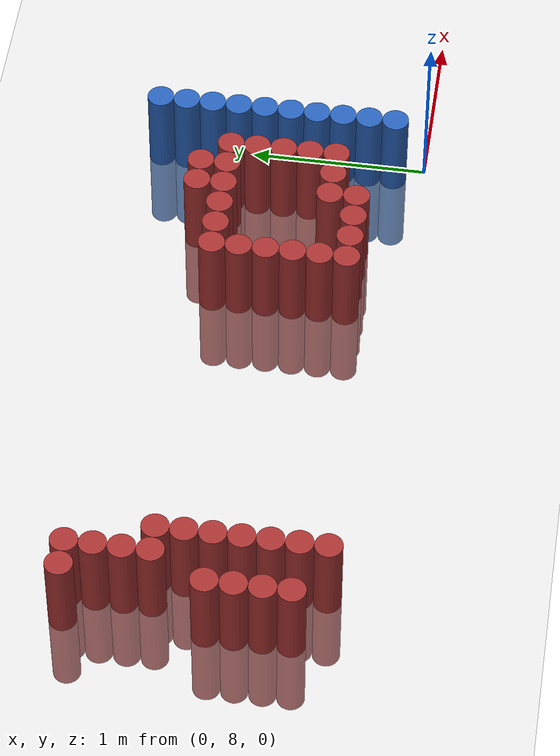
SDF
<sdf version="1.6">
 <world name="default">
  <model name="ground_plane">
   <static>1</static>
   <link name="link">
    <collision name="collision">
     <geometry><plane><normal>0 0 1</normal><size>100 100</size></plane></geometry>
     <surface><friction><ode><mu>100</mu><mu2>50</mu2></ode></friction></surface>
    </collision>
    <visual name="visual">
     <cast_shadows>0</cast_shadows>
     <geometry><plane><normal>0 0 1</normal><size>100 100</size></plane></geometry>
     <material>
      <script><uri>file://media/materials/scripts/gazebo.material</uri><name>Gazebo/Grey</name></script>
     </material>
    </visual>
   </link>
  </model>
  <model name="unit_cylinder_164">
   <static>1</static>
   <pose>-3.375000 8.325000 0.000000 0.000000 0.000000 0.000000</pose>
   <link name="link">
    <inertial>
     <mass>1</mass>
     <inertia><ixx>0.145833</ixx><ixy>0</ixy><ixz>0</ixz><iyy>0.145833</iyy><iyz>0</iyz><izz>0.125</izz></inertia>
    </inertial>
    <collision name="collision">
     <geometry><cylinder><radius>0.075000</radius><length>1</length></cylinder></geometry>
    </collision>
    <visual name="visual">
     <geometry><cylinder><radius>0.075000</radius><length>1</length></cylinder></geometry>
     <material>
      <ambient>0.648000 0.192000 0.192000 1</ambient>
      <diffuse>0.648000 0.192000 0.192000 1</diffuse>
     </material>
     <material>
      <script><name>Gazebo/Grey</name><uri>file://media/materials/scripts/gazebo.material</uri></script>
     </material>
    </visual>
   </link>
  </model>
  <model name="unit_cylinder_165">
   <static>1</static>
   <pose>-3.375000 8.475000 0.000000 0.000000 0.000000 0.000000</pose>
   <link name="link">
    <inertial>
     <mass>1</mass>
     <inertia><ixx>0.145833</ixx><ixy>0</ixy><ixz>0</ixz><iyy>0.145833</iyy><iyz>0</iyz><izz>0.125</izz></inertia>
    </inertial>
    <collision name="collision">
     <geometry><cylinder><radius>0.075000</radius><length>1</length></cylinder></geometry>
    </collision>
    <visual name="visual">
     <geometry><cylinder><radius>0.075000</radius><length>1</length></cylinder></geometry>
     <material>
      <ambient>0.648000 0.192000 0.192000 1</ambient>
      <diffuse>0.648000 0.192000 0.192000 1</diffuse>
     </material>
     <material>
      <script><name>Gazebo/Grey</name><uri>file://media/materials/scripts/gazebo.material</uri></script>
     </material>
    </visual>
   </link>
  </model>
  <model name="unit_cylinder_166">
   <static>1</static>
   <pose>-3.375000 8.625000 0.000000 0.000000 0.000000 0.000000</pose>
   <link name="link">
    <inertial>
     <mass>1</mass>
     <inertia><ixx>0.145833</ixx><ixy>0</ixy><ixz>0</ixz><iyy>0.145833</iyy><iyz>0</iyz><izz>0.125</izz></inertia>
    </inertial>
    <collision name="collision">
     <geometry><cylinder><radius>0.075000</radius><length>1</length></cylinder></geometry>
    </collision>
    <visual name="visual">
     <geometry><cylinder><radius>0.075000</radius><length>1</length></cylinder></geometry>
     <material>
      <ambient>0.648000 0.192000 0.192000 1</ambient>
      <diffuse>0.648000 0.192000 0.192000 1</diffuse>
     </material>
     <material>
      <script><name>Gazebo/Grey</name><uri>file://media/materials/scripts/gazebo.material</uri></script>
     </material>
    </visual>
   </link>
  </model>
  <model name="unit_cylinder_167">
   <static>1</static>
   <pose>-3.375000 8.775000 0.000000 0.000000 0.000000 0.000000</pose>
   <link name="link">
    <inertial>
     <mass>1</mass>
     <inertia><ixx>0.145833</ixx><ixy>0</ixy><ixz>0</ixz><iyy>0.145833</iyy><iyz>0</iyz><izz>0.125</izz></inertia>
    </inertial>
    <collision name="collision">
     <geometry><cylinder><radius>0.075000</radius><length>1</length></cylinder></geometry>
    </collision>
    <visual name="visual">
     <geometry><cylinder><radius>0.075000</radius><length>1</length></cylinder></geometry>
     <material>
      <ambient>0.648000 0.192000 0.192000 1</ambient>
      <diffuse>0.648000 0.192000 0.192000 1</diffuse>
     </material>
     <material>
      <script><name>Gazebo/Grey</name><uri>file://media/materials/scripts/gazebo.material</uri></script>
     </material>
    </visual>
   </link>
  </model>
  <model name="unit_cylinder_168">
   <static>1</static>
   <pose>-3.375000 9.525000 0.000000 0.000000 0.000000 0.000000</pose>
   <link name="link">
    <inertial>
     <mass>1</mass>
     <inertia><ixx>0.145833</ixx><ixy>0</ixy><ixz>0</ixz><iyy>0.145833</iyy><iyz>0</iyz><izz>0.125</izz></inertia>
    </inertial>
    <collision name="collision">
     <geometry><cylinder><radius>0.075000</radius><length>1</length></cylinder></geometry>
    </collision>
    <visual name="visual">
     <geometry><cylinder><radius>0.075000</radius><length>1</length></cylinder></geometry>
     <material>
      <ambient>0.648000 0.192000 0.192000 1</ambient>
      <diffuse>0.648000 0.192000 0.192000 1</diffuse>
     </material>
     <material>
      <script><name>Gazebo/Grey</name><uri>file://media/materials/scripts/gazebo.material</uri></script>
     </material>
    </visual>
   </link>
  </model>
  <model name="unit_cylinder_179">
   <static>1</static>
   <pose>-3.225000 9.075000 0.000000 0.000000 0.000000 0.000000</pose>
   <link name="link">
    <inertial>
     <mass>1</mass>
     <inertia><ixx>0.145833</ixx><ixy>0</ixy><ixz>0</ixz><iyy>0.145833</iyy><iyz>0</iyz><izz>0.125</izz></inertia>
    </inertial>
    <collision name="collision">
     <geometry><cylinder><radius>0.075000</radius><length>1</length></cylinder></geometry>
    </collision>
    <visual name="visual">
     <geometry><cylinder><radius>0.075000</radius><length>1</length></cylinder></geometry>
     <material>
      <ambient>0.648000 0.192000 0.192000 1</ambient>
      <diffuse>0.648000 0.192000 0.192000 1</diffuse>
     </material>
     <material>
      <script><name>Gazebo/Grey</name><uri>file://media/materials/scripts/gazebo.material</uri></script>
     </material>
    </visual>
   </link>
  </model>
  <model name="unit_cylinder_180">
   <static>1</static>
   <pose>-3.225000 9.225000 0.000000 0.000000 0.000000 0.000000</pose>
   <link name="link">
    <inertial>
     <mass>1</mass>
     <inertia><ixx>0.145833</ixx><ixy>0</ixy><ixz>0</ixz><iyy>0.145833</iyy><iyz>0</iyz><izz>0.125</izz></inertia>
    </inertial>
    <collision name="collision">
     <geometry><cylinder><radius>0.075000</radius><length>1</length></cylinder></geometry>
    </collision>
    <visual name="visual">
     <geometry><cylinder><radius>0.075000</radius><length>1</length></cylinder></geometry>
     <material>
      <ambient>0.648000 0.192000 0.192000 1</ambient>
      <diffuse>0.648000 0.192000 0.192000 1</diffuse>
     </material>
     <material>
      <script><name>Gazebo/Grey</name><uri>file://media/materials/scripts/gazebo.material</uri></script>
     </material>
    </visual>
   </link>
  </model>
  <model name="unit_cylinder_181">
   <static>1</static>
   <pose>-3.225000 9.375000 0.000000 0.000000 0.000000 0.000000</pose>
   <link name="link">
    <inertial>
     <mass>1</mass>
     <inertia><ixx>0.145833</ixx><ixy>0</ixy><ixz>0</ixz><iyy>0.145833</iyy><iyz>0</iyz><izz>0.125</izz></inertia>
    </inertial>
    <collision name="collision">
     <geometry><cylinder><radius>0.075000</radius><length>1</length></cylinder></geometry>
    </collision>
    <visual name="visual">
     <geometry><cylinder><radius>0.075000</radius><length>1</length></cylinder></geometry>
     <material>
      <ambient>0.648000 0.192000 0.192000 1</ambient>
      <diffuse>0.648000 0.192000 0.192000 1</diffuse>
     </material>
     <material>
      <script><name>Gazebo/Grey</name><uri>file://media/materials/scripts/gazebo.material</uri></script>
     </material>
    </visual>
   </link>
  </model>
  <model name="unit_cylinder_182">
   <static>1</static>
   <pose>-3.225000 9.525000 0.000000 0.000000 0.000000 0.000000</pose>
   <link name="link">
    <inertial>
     <mass>1</mass>
     <inertia><ixx>0.145833</ixx><ixy>0</ixy><ixz>0</ixz><iyy>0.145833</iyy><iyz>0</iyz><izz>0.125</izz></inertia>
    </inertial>
    <collision name="collision">
     <geometry><cylinder><radius>0.075000</radius><length>1</length></cylinder></geometry>
    </collision>
    <visual name="visual">
     <geometry><cylinder><radius>0.075000</radius><length>1</length></cylinder></geometry>
     <material>
      <ambient>0.648000 0.192000 0.192000 1</ambient>
      <diffuse>0.648000 0.192000 0.192000 1</diffuse>
     </material>
     <material>
      <script><name>Gazebo/Grey</name><uri>file://media/materials/scripts/gazebo.material</uri></script>
     </material>
    </visual>
   </link>
  </model>
  <model name="unit_cylinder_186">
   <static>1</static>
   <pose>-3.075000 8.175000 0.000000 0.000000 0.000000 0.000000</pose>
   <link name="link">
    <inertial>
     <mass>1</mass>
     <inertia><ixx>0.145833</ixx><ixy>0</ixy><ixz>0</ixz><iyy>0.145833</iyy><iyz>0</iyz><izz>0.125</izz></inertia>
    </inertial>
    <collision name="collision">
     <geometry><cylinder><radius>0.075000</radius><length>1</length></cylinder></geometry>
    </collision>
    <visual name="visual">
     <geometry><cylinder><radius>0.075000</radius><length>1</length></cylinder></geometry>
     <material>
      <ambient>0.648000 0.192000 0.192000 1</ambient>
      <diffuse>0.648000 0.192000 0.192000 1</diffuse>
     </material>
     <material>
      <script><name>Gazebo/Grey</name><uri>file://media/materials/scripts/gazebo.material</uri></script>
     </material>
    </visual>
   </link>
  </model>
  <model name="unit_cylinder_187">
   <static>1</static>
   <pose>-3.075000 8.325000 0.000000 0.000000 0.000000 0.000000</pose>
   <link name="link">
    <inertial>
     <mass>1</mass>
     <inertia><ixx>0.145833</ixx><ixy>0</ixy><ixz>0</ixz><iyy>0.145833</iyy><iyz>0</iyz><izz>0.125</izz></inertia>
    </inertial>
    <collision name="collision">
     <geometry><cylinder><radius>0.075000</radius><length>1</length></cylinder></geometry>
    </collision>
    <visual name="visual">
     <geometry><cylinder><radius>0.075000</radius><length>1</length></cylinder></geometry>
     <material>
      <ambient>0.648000 0.192000 0.192000 1</ambient>
      <diffuse>0.648000 0.192000 0.192000 1</diffuse>
     </material>
     <material>
      <script><name>Gazebo/Grey</name><uri>file://media/materials/scripts/gazebo.material</uri></script>
     </material>
    </visual>
   </link>
  </model>
  <model name="unit_cylinder_188">
   <static>1</static>
   <pose>-3.075000 8.475000 0.000000 0.000000 0.000000 0.000000</pose>
   <link name="link">
    <inertial>
     <mass>1</mass>
     <inertia><ixx>0.145833</ixx><ixy>0</ixy><ixz>0</ixz><iyy>0.145833</iyy><iyz>0</iyz><izz>0.125</izz></inertia>
    </inertial>
    <collision name="collision">
     <geometry><cylinder><radius>0.075000</radius><length>1</length></cylinder></geometry>
    </collision>
    <visual name="visual">
     <geometry><cylinder><radius>0.075000</radius><length>1</length></cylinder></geometry>
     <material>
      <ambient>0.648000 0.192000 0.192000 1</ambient>
      <diffuse>0.648000 0.192000 0.192000 1</diffuse>
     </material>
     <material>
      <script><name>Gazebo/Grey</name><uri>file://media/materials/scripts/gazebo.material</uri></script>
     </material>
    </visual>
   </link>
  </model>
  <model name="unit_cylinder_189">
   <static>1</static>
   <pose>-3.075000 8.625000 0.000000 0.000000 0.000000 0.000000</pose>
   <link name="link">
    <inertial>
     <mass>1</mass>
     <inertia><ixx>0.145833</ixx><ixy>0</ixy><ixz>0</ixz><iyy>0.145833</iyy><iyz>0</iyz><izz>0.125</izz></inertia>
    </inertial>
    <collision name="collision">
     <geometry><cylinder><radius>0.075000</radius><length>1</length></cylinder></geometry>
    </collision>
    <visual name="visual">
     <geometry><cylinder><radius>0.075000</radius><length>1</length></cylinder></geometry>
     <material>
      <ambient>0.648000 0.192000 0.192000 1</ambient>
      <diffuse>0.648000 0.192000 0.192000 1</diffuse>
     </material>
     <material>
      <script><name>Gazebo/Grey</name><uri>file://media/materials/scripts/gazebo.material</uri></script>
     </material>
    </visual>
   </link>
  </model>
  <model name="unit_cylinder_190">
   <static>1</static>
   <pose>-3.075000 8.775000 0.000000 0.000000 0.000000 0.000000</pose>
   <link name="link">
    <inertial>
     <mass>1</mass>
     <inertia><ixx>0.145833</ixx><ixy>0</ixy><ixz>0</ixz><iyy>0.145833</iyy><iyz>0</iyz><izz>0.125</izz></inertia>
    </inertial>
    <collision name="collision">
     <geometry><cylinder><radius>0.075000</radius><length>1</length></cylinder></geometry>
    </collision>
    <visual name="visual">
     <geometry><cylinder><radius>0.075000</radius><length>1</length></cylinder></geometry>
     <material>
      <ambient>0.648000 0.192000 0.192000 1</ambient>
      <diffuse>0.648000 0.192000 0.192000 1</diffuse>
     </material>
     <material>
      <script><name>Gazebo/Grey</name><uri>file://media/materials/scripts/gazebo.material</uri></script>
     </material>
    </visual>
   </link>
  </model>
  <model name="unit_cylinder_191">
   <static>1</static>
   <pose>-3.075000 8.925000 0.000000 0.000000 0.000000 0.000000</pose>
   <link name="link">
    <inertial>
     <mass>1</mass>
     <inertia><ixx>0.145833</ixx><ixy>0</ixy><ixz>0</ixz><iyy>0.145833</iyy><iyz>0</iyz><izz>0.125</izz></inertia>
    </inertial>
    <collision name="collision">
     <geometry><cylinder><radius>0.075000</radius><length>1</length></cylinder></geometry>
    </collision>
    <visual name="visual">
     <geometry><cylinder><radius>0.075000</radius><length>1</length></cylinder></geometry>
     <material>
      <ambient>0.648000 0.192000 0.192000 1</ambient>
      <diffuse>0.648000 0.192000 0.192000 1</diffuse>
     </material>
     <material>
      <script><name>Gazebo/Grey</name><uri>file://media/materials/scripts/gazebo.material</uri></script>
     </material>
    </visual>
   </link>
  </model>
  <model name="unit_cylinder_192">
   <static>1</static>
   <pose>-3.075000 9.075000 0.000000 0.000000 0.000000 0.000000</pose>
   <link name="link">
    <inertial>
     <mass>1</mass>
     <inertia><ixx>0.145833</ixx><ixy>0</ixy><ixz>0</ixz><iyy>0.145833</iyy><iyz>0</iyz><izz>0.125</izz></inertia>
    </inertial>
    <collision name="collision">
     <geometry><cylinder><radius>0.075000</radius><length>1</length></cylinder></geometry>
    </collision>
    <visual name="visual">
     <geometry><cylinder><radius>0.075000</radius><length>1</length></cylinder></geometry>
     <material>
      <ambient>0.648000 0.192000 0.192000 1</ambient>
      <diffuse>0.648000 0.192000 0.192000 1</diffuse>
     </material>
     <material>
      <script><name>Gazebo/Grey</name><uri>file://media/materials/scripts/gazebo.material</uri></script>
     </material>
    </visual>
   </link>
  </model>
  <model name="unit_cylinder_210">
   <static>1</static>
   <pose>-1.125000 8.325000 0.000000 0.000000 0.000000 0.000000</pose>
   <link name="link">
    <inertial>
     <mass>1</mass>
     <inertia><ixx>0.145833</ixx><ixy>0</ixy><ixz>0</ixz><iyy>0.145833</iyy><iyz>0</iyz><izz>0.125</izz></inertia>
    </inertial>
    <collision name="collision">
     <geometry><cylinder><radius>0.075000</radius><length>1</length></cylinder></geometry>
    </collision>
    <visual name="visual">
     <geometry><cylinder><radius>0.075000</radius><length>1</length></cylinder></geometry>
     <material>
      <ambient>0.648000 0.192000 0.192000 1</ambient>
      <diffuse>0.648000 0.192000 0.192000 1</diffuse>
     </material>
     <material>
      <script><name>Gazebo/Grey</name><uri>file://media/materials/scripts/gazebo.material</uri></script>
     </material>
    </visual>
   </link>
  </model>
  <model name="unit_cylinder_211">
   <static>1</static>
   <pose>-1.125000 8.475000 0.000000 0.000000 0.000000 0.000000</pose>
   <link name="link">
    <inertial>
     <mass>1</mass>
     <inertia><ixx>0.145833</ixx><ixy>0</ixy><ixz>0</ixz><iyy>0.145833</iyy><iyz>0</iyz><izz>0.125</izz></inertia>
    </inertial>
    <collision name="collision">
     <geometry><cylinder><radius>0.075000</radius><length>1</length></cylinder></geometry>
    </collision>
    <visual name="visual">
     <geometry><cylinder><radius>0.075000</radius><length>1</length></cylinder></geometry>
     <material>
      <ambient>0.648000 0.192000 0.192000 1</ambient>
      <diffuse>0.648000 0.192000 0.192000 1</diffuse>
     </material>
     <material>
      <script><name>Gazebo/Grey</name><uri>file://media/materials/scripts/gazebo.material</uri></script>
     </material>
    </visual>
   </link>
  </model>
  <model name="unit_cylinder_212">
   <static>1</static>
   <pose>-1.125000 8.625000 0.000000 0.000000 0.000000 0.000000</pose>
   <link name="link">
    <inertial>
     <mass>1</mass>
     <inertia><ixx>0.145833</ixx><ixy>0</ixy><ixz>0</ixz><iyy>0.145833</iyy><iyz>0</iyz><izz>0.125</izz></inertia>
    </inertial>
    <collision name="collision">
     <geometry><cylinder><radius>0.075000</radius><length>1</length></cylinder></geometry>
    </collision>
    <visual name="visual">
     <geometry><cylinder><radius>0.075000</radius><length>1</length></cylinder></geometry>
     <material>
      <ambient>0.648000 0.192000 0.192000 1</ambient>
      <diffuse>0.648000 0.192000 0.192000 1</diffuse>
     </material>
     <material>
      <script><name>Gazebo/Grey</name><uri>file://media/materials/scripts/gazebo.material</uri></script>
     </material>
    </visual>
   </link>
  </model>
  <model name="unit_cylinder_213">
   <static>1</static>
   <pose>-1.125000 8.775000 0.000000 0.000000 0.000000 0.000000</pose>
   <link name="link">
    <inertial>
     <mass>1</mass>
     <inertia><ixx>0.145833</ixx><ixy>0</ixy><ixz>0</ixz><iyy>0.145833</iyy><iyz>0</iyz><izz>0.125</izz></inertia>
    </inertial>
    <collision name="collision">
     <geometry><cylinder><radius>0.075000</radius><length>1</length></cylinder></geometry>
    </collision>
    <visual name="visual">
     <geometry><cylinder><radius>0.075000</radius><length>1</length></cylinder></geometry>
     <material>
      <ambient>0.648000 0.192000 0.192000 1</ambient>
      <diffuse>0.648000 0.192000 0.192000 1</diffuse>
     </material>
     <material>
      <script><name>Gazebo/Grey</name><uri>file://media/materials/scripts/gazebo.material</uri></script>
     </material>
    </visual>
   </link>
  </model>
  <model name="unit_cylinder_214">
   <static>1</static>
   <pose>-1.125000 8.925000 0.000000 0.000000 0.000000 0.000000</pose>
   <link name="link">
    <inertial>
     <mass>1</mass>
     <inertia><ixx>0.145833</ixx><ixy>0</ixy><ixz>0</ixz><iyy>0.145833</iyy><iyz>0</iyz><izz>0.125</izz></inertia>
    </inertial>
    <collision name="collision">
     <geometry><cylinder><radius>0.075000</radius><length>1</length></cylinder></geometry>
    </collision>
    <visual name="visual">
     <geometry><cylinder><radius>0.075000</radius><length>1</length></cylinder></geometry>
     <material>
      <ambient>0.648000 0.192000 0.192000 1</ambient>
      <diffuse>0.648000 0.192000 0.192000 1</diffuse>
     </material>
     <material>
      <script><name>Gazebo/Grey</name><uri>file://media/materials/scripts/gazebo.material</uri></script>
     </material>
    </visual>
   </link>
  </model>
  <model name="unit_cylinder_215">
   <static>1</static>
   <pose>-1.125000 9.075000 0.000000 0.000000 0.000000 0.000000</pose>
   <link name="link">
    <inertial>
     <mass>1</mass>
     <inertia><ixx>0.145833</ixx><ixy>0</ixy><ixz>0</ixz><iyy>0.145833</iyy><iyz>0</iyz><izz>0.125</izz></inertia>
    </inertial>
    <collision name="collision">
     <geometry><cylinder><radius>0.075000</radius><length>1</length></cylinder></geometry>
    </collision>
    <visual name="visual">
     <geometry><cylinder><radius>0.075000</radius><length>1</length></cylinder></geometry>
     <material>
      <ambient>0.648000 0.192000 0.192000 1</ambient>
      <diffuse>0.648000 0.192000 0.192000 1</diffuse>
     </material>
     <material>
      <script><name>Gazebo/Grey</name><uri>file://media/materials/scripts/gazebo.material</uri></script>
     </material>
    </visual>
   </link>
  </model>
  <model name="unit_cylinder_218">
   <static>1</static>
   <pose>-0.975000 8.325000 0.000000 0.000000 0.000000 0.000000</pose>
   <link name="link">
    <inertial>
     <mass>1</mass>
     <inertia><ixx>0.145833</ixx><ixy>0</ixy><ixz>0</ixz><iyy>0.145833</iyy><iyz>0</iyz><izz>0.125</izz></inertia>
    </inertial>
    <collision name="collision">
     <geometry><cylinder><radius>0.075000</radius><length>1</length></cylinder></geometry>
    </collision>
    <visual name="visual">
     <geometry><cylinder><radius>0.075000</radius><length>1</length></cylinder></geometry>
     <material>
      <ambient>0.648000 0.192000 0.192000 1</ambient>
      <diffuse>0.648000 0.192000 0.192000 1</diffuse>
     </material>
     <material>
      <script><name>Gazebo/Grey</name><uri>file://media/materials/scripts/gazebo.material</uri></script>
     </material>
    </visual>
   </link>
  </model>
  <model name="unit_cylinder_219">
   <static>1</static>
   <pose>-0.975000 9.075000 0.000000 0.000000 0.000000 0.000000</pose>
   <link name="link">
    <inertial>
     <mass>1</mass>
     <inertia><ixx>0.145833</ixx><ixy>0</ixy><ixz>0</ixz><iyy>0.145833</iyy><iyz>0</iyz><izz>0.125</izz></inertia>
    </inertial>
    <collision name="collision">
     <geometry><cylinder><radius>0.075000</radius><length>1</length></cylinder></geometry>
    </collision>
    <visual name="visual">
     <geometry><cylinder><radius>0.075000</radius><length>1</length></cylinder></geometry>
     <material>
      <ambient>0.648000 0.192000 0.192000 1</ambient>
      <diffuse>0.648000 0.192000 0.192000 1</diffuse>
     </material>
     <material>
      <script><name>Gazebo/Grey</name><uri>file://media/materials/scripts/gazebo.material</uri></script>
     </material>
    </visual>
   </link>
  </model>
  <model name="unit_cylinder_222">
   <static>1</static>
   <pose>-0.825000 8.325000 0.000000 0.000000 0.000000 0.000000</pose>
   <link name="link">
    <inertial>
     <mass>1</mass>
     <inertia><ixx>0.145833</ixx><ixy>0</ixy><ixz>0</ixz><iyy>0.145833</iyy><iyz>0</iyz><izz>0.125</izz></inertia>
    </inertial>
    <collision name="collision">
     <geometry><cylinder><radius>0.075000</radius><length>1</length></cylinder></geometry>
    </collision>
    <visual name="visual">
     <geometry><cylinder><radius>0.075000</radius><length>1</length></cylinder></geometry>
     <material>
      <ambient>0.648000 0.192000 0.192000 1</ambient>
      <diffuse>0.648000 0.192000 0.192000 1</diffuse>
     </material>
     <material>
      <script><name>Gazebo/Grey</name><uri>file://media/materials/scripts/gazebo.material</uri></script>
     </material>
    </visual>
   </link>
  </model>
  <model name="unit_cylinder_223">
   <static>1</static>
   <pose>-0.825000 9.075000 0.000000 0.000000 0.000000 0.000000</pose>
   <link name="link">
    <inertial>
     <mass>1</mass>
     <inertia><ixx>0.145833</ixx><ixy>0</ixy><ixz>0</ixz><iyy>0.145833</iyy><iyz>0</iyz><izz>0.125</izz></inertia>
    </inertial>
    <collision name="collision">
     <geometry><cylinder><radius>0.075000</radius><length>1</length></cylinder></geometry>
    </collision>
    <visual name="visual">
     <geometry><cylinder><radius>0.075000</radius><length>1</length></cylinder></geometry>
     <material>
      <ambient>0.648000 0.192000 0.192000 1</ambient>
      <diffuse>0.648000 0.192000 0.192000 1</diffuse>
     </material>
     <material>
      <script><name>Gazebo/Grey</name><uri>file://media/materials/scripts/gazebo.material</uri></script>
     </material>
    </visual>
   </link>
  </model>
  <model name="unit_cylinder_229">
   <static>1</static>
   <pose>-0.675000 8.325000 0.000000 0.000000 0.000000 0.000000</pose>
   <link name="link">
    <inertial>
     <mass>1</mass>
     <inertia><ixx>0.145833</ixx><ixy>0</ixy><ixz>0</ixz><iyy>0.145833</iyy><iyz>0</iyz><izz>0.125</izz></inertia>
    </inertial>
    <collision name="collision">
     <geometry><cylinder><radius>0.075000</radius><length>1</length></cylinder></geometry>
    </collision>
    <visual name="visual">
     <geometry><cylinder><radius>0.075000</radius><length>1</length></cylinder></geometry>
     <material>
      <ambient>0.648000 0.192000 0.192000 1</ambient>
      <diffuse>0.648000 0.192000 0.192000 1</diffuse>
     </material>
     <material>
      <script><name>Gazebo/Grey</name><uri>file://media/materials/scripts/gazebo.material</uri></script>
     </material>
    </visual>
   </link>
  </model>
  <model name="unit_cylinder_230">
   <static>1</static>
   <pose>-0.675000 8.475000 0.000000 0.000000 0.000000 0.000000</pose>
   <link name="link">
    <inertial>
     <mass>1</mass>
     <inertia><ixx>0.145833</ixx><ixy>0</ixy><ixz>0</ixz><iyy>0.145833</iyy><iyz>0</iyz><izz>0.125</izz></inertia>
    </inertial>
    <collision name="collision">
     <geometry><cylinder><radius>0.075000</radius><length>1</length></cylinder></geometry>
    </collision>
    <visual name="visual">
     <geometry><cylinder><radius>0.075000</radius><length>1</length></cylinder></geometry>
     <material>
      <ambient>0.648000 0.192000 0.192000 1</ambient>
      <diffuse>0.648000 0.192000 0.192000 1</diffuse>
     </material>
     <material>
      <script><name>Gazebo/Grey</name><uri>file://media/materials/scripts/gazebo.material</uri></script>
     </material>
    </visual>
   </link>
  </model>
  <model name="unit_cylinder_231">
   <static>1</static>
   <pose>-0.675000 9.075000 0.000000 0.000000 0.000000 0.000000</pose>
   <link name="link">
    <inertial>
     <mass>1</mass>
     <inertia><ixx>0.145833</ixx><ixy>0</ixy><ixz>0</ixz><iyy>0.145833</iyy><iyz>0</iyz><izz>0.125</izz></inertia>
    </inertial>
    <collision name="collision">
     <geometry><cylinder><radius>0.075000</radius><length>1</length></cylinder></geometry>
    </collision>
    <visual name="visual">
     <geometry><cylinder><radius>0.075000</radius><length>1</length></cylinder></geometry>
     <material>
      <ambient>0.648000 0.192000 0.192000 1</ambient>
      <diffuse>0.648000 0.192000 0.192000 1</diffuse>
     </material>
     <material>
      <script><name>Gazebo/Grey</name><uri>file://media/materials/scripts/gazebo.material</uri></script>
     </material>
    </visual>
   </link>
  </model>
  <model name="unit_cylinder_232">
   <static>1</static>
   <pose>-0.675000 9.225000 0.000000 0.000000 0.000000 0.000000</pose>
   <link name="link">
    <inertial>
     <mass>1</mass>
     <inertia><ixx>0.145833</ixx><ixy>0</ixy><ixz>0</ixz><iyy>0.145833</iyy><iyz>0</iyz><izz>0.125</izz></inertia>
    </inertial>
    <collision name="collision">
     <geometry><cylinder><radius>0.075000</radius><length>1</length></cylinder></geometry>
    </collision>
    <visual name="visual">
     <geometry><cylinder><radius>0.075000</radius><length>1</length></cylinder></geometry>
     <material>
      <ambient>0.648000 0.192000 0.192000 1</ambient>
      <diffuse>0.648000 0.192000 0.192000 1</diffuse>
     </material>
     <material>
      <script><name>Gazebo/Grey</name><uri>file://media/materials/scripts/gazebo.material</uri></script>
     </material>
    </visual>
   </link>
  </model>
  <model name="unit_cylinder_238">
   <static>1</static>
   <pose>-0.525000 8.475000 0.000000 0.000000 0.000000 0.000000</pose>
   <link name="link">
    <inertial>
     <mass>1</mass>
     <inertia><ixx>0.145833</ixx><ixy>0</ixy><ixz>0</ixz><iyy>0.145833</iyy><iyz>0</iyz><izz>0.125</izz></inertia>
    </inertial>
    <collision name="collision">
     <geometry><cylinder><radius>0.075000</radius><length>1</length></cylinder></geometry>
    </collision>
    <visual name="visual">
     <geometry><cylinder><radius>0.075000</radius><length>1</length></cylinder></geometry>
     <material>
      <ambient>0.648000 0.192000 0.192000 1</ambient>
      <diffuse>0.648000 0.192000 0.192000 1</diffuse>
     </material>
     <material>
      <script><name>Gazebo/Grey</name><uri>file://media/materials/scripts/gazebo.material</uri></script>
     </material>
    </visual>
   </link>
  </model>
  <model name="unit_cylinder_239">
   <static>1</static>
   <pose>-0.525000 9.075000 0.000000 0.000000 0.000000 0.000000</pose>
   <link name="link">
    <inertial>
     <mass>1</mass>
     <inertia><ixx>0.145833</ixx><ixy>0</ixy><ixz>0</ixz><iyy>0.145833</iyy><iyz>0</iyz><izz>0.125</izz></inertia>
    </inertial>
    <collision name="collision">
     <geometry><cylinder><radius>0.075000</radius><length>1</length></cylinder></geometry>
    </collision>
    <visual name="visual">
     <geometry><cylinder><radius>0.075000</radius><length>1</length></cylinder></geometry>
     <material>
      <ambient>0.648000 0.192000 0.192000 1</ambient>
      <diffuse>0.648000 0.192000 0.192000 1</diffuse>
     </material>
     <material>
      <script><name>Gazebo/Grey</name><uri>file://media/materials/scripts/gazebo.material</uri></script>
     </material>
    </visual>
   </link>
  </model>
  <model name="unit_cylinder_240">
   <static>1</static>
   <pose>-0.525000 9.225000 0.000000 0.000000 0.000000 0.000000</pose>
   <link name="link">
    <inertial>
     <mass>1</mass>
     <inertia><ixx>0.145833</ixx><ixy>0</ixy><ixz>0</ixz><iyy>0.145833</iyy><iyz>0</iyz><izz>0.125</izz></inertia>
    </inertial>
    <collision name="collision">
     <geometry><cylinder><radius>0.075000</radius><length>1</length></cylinder></geometry>
    </collision>
    <visual name="visual">
     <geometry><cylinder><radius>0.075000</radius><length>1</length></cylinder></geometry>
     <material>
      <ambient>0.648000 0.192000 0.192000 1</ambient>
      <diffuse>0.648000 0.192000 0.192000 1</diffuse>
     </material>
     <material>
      <script><name>Gazebo/Grey</name><uri>file://media/materials/scripts/gazebo.material</uri></script>
     </material>
    </visual>
   </link>
  </model>
  <model name="unit_cylinder_245">
   <static>1</static>
   <pose>-0.375000 8.475000 0.000000 0.000000 0.000000 0.000000</pose>
   <link name="link">
    <inertial>
     <mass>1</mass>
     <inertia><ixx>0.145833</ixx><ixy>0</ixy><ixz>0</ixz><iyy>0.145833</iyy><iyz>0</iyz><izz>0.125</izz></inertia>
    </inertial>
    <collision name="collision">
     <geometry><cylinder><radius>0.075000</radius><length>1</length></cylinder></geometry>
    </collision>
    <visual name="visual">
     <geometry><cylinder><radius>0.075000</radius><length>1</length></cylinder></geometry>
     <material>
      <ambient>0.648000 0.192000 0.192000 1</ambient>
      <diffuse>0.648000 0.192000 0.192000 1</diffuse>
     </material>
     <material>
      <script><name>Gazebo/Grey</name><uri>file://media/materials/scripts/gazebo.material</uri></script>
     </material>
    </visual>
   </link>
  </model>
  <model name="unit_cylinder_246">
   <static>1</static>
   <pose>-0.375000 8.625000 0.000000 0.000000 0.000000 0.000000</pose>
   <link name="link">
    <inertial>
     <mass>1</mass>
     <inertia><ixx>0.145833</ixx><ixy>0</ixy><ixz>0</ixz><iyy>0.145833</iyy><iyz>0</iyz><izz>0.125</izz></inertia>
    </inertial>
    <collision name="collision">
     <geometry><cylinder><radius>0.075000</radius><length>1</length></cylinder></geometry>
    </collision>
    <visual name="visual">
     <geometry><cylinder><radius>0.075000</radius><length>1</length></cylinder></geometry>
     <material>
      <ambient>0.648000 0.192000 0.192000 1</ambient>
      <diffuse>0.648000 0.192000 0.192000 1</diffuse>
     </material>
     <material>
      <script><name>Gazebo/Grey</name><uri>file://media/materials/scripts/gazebo.material</uri></script>
     </material>
    </visual>
   </link>
  </model>
  <model name="unit_cylinder_247">
   <static>1</static>
   <pose>-0.375000 8.775000 0.000000 0.000000 0.000000 0.000000</pose>
   <link name="link">
    <inertial>
     <mass>1</mass>
     <inertia><ixx>0.145833</ixx><ixy>0</ixy><ixz>0</ixz><iyy>0.145833</iyy><iyz>0</iyz><izz>0.125</izz></inertia>
    </inertial>
    <collision name="collision">
     <geometry><cylinder><radius>0.075000</radius><length>1</length></cylinder></geometry>
    </collision>
    <visual name="visual">
     <geometry><cylinder><radius>0.075000</radius><length>1</length></cylinder></geometry>
     <material>
      <ambient>0.648000 0.192000 0.192000 1</ambient>
      <diffuse>0.648000 0.192000 0.192000 1</diffuse>
     </material>
     <material>
      <script><name>Gazebo/Grey</name><uri>file://media/materials/scripts/gazebo.material</uri></script>
     </material>
    </visual>
   </link>
  </model>
  <model name="unit_cylinder_248">
   <static>1</static>
   <pose>-0.375000 8.925000 0.000000 0.000000 0.000000 0.000000</pose>
   <link name="link">
    <inertial>
     <mass>1</mass>
     <inertia><ixx>0.145833</ixx><ixy>0</ixy><ixz>0</ixz><iyy>0.145833</iyy><iyz>0</iyz><izz>0.125</izz></inertia>
    </inertial>
    <collision name="collision">
     <geometry><cylinder><radius>0.075000</radius><length>1</length></cylinder></geometry>
    </collision>
    <visual name="visual">
     <geometry><cylinder><radius>0.075000</radius><length>1</length></cylinder></geometry>
     <material>
      <ambient>0.648000 0.192000 0.192000 1</ambient>
      <diffuse>0.648000 0.192000 0.192000 1</diffuse>
     </material>
     <material>
      <script><name>Gazebo/Grey</name><uri>file://media/materials/scripts/gazebo.material</uri></script>
     </material>
    </visual>
   </link>
  </model>
  <model name="unit_cylinder_249">
   <static>1</static>
   <pose>-0.375000 9.075000 0.000000 0.000000 0.000000 0.000000</pose>
   <link name="link">
    <inertial>
     <mass>1</mass>
     <inertia><ixx>0.145833</ixx><ixy>0</ixy><ixz>0</ixz><iyy>0.145833</iyy><iyz>0</iyz><izz>0.125</izz></inertia>
    </inertial>
    <collision name="collision">
     <geometry><cylinder><radius>0.075000</radius><length>1</length></cylinder></geometry>
    </collision>
    <visual name="visual">
     <geometry><cylinder><radius>0.075000</radius><length>1</length></cylinder></geometry>
     <material>
      <ambient>0.648000 0.192000 0.192000 1</ambient>
      <diffuse>0.648000 0.192000 0.192000 1</diffuse>
     </material>
     <material>
      <script><name>Gazebo/Grey</name><uri>file://media/materials/scripts/gazebo.material</uri></script>
     </material>
    </visual>
   </link>
  </model>
  <model name="unit_cylinder_275">
   <static>1</static>
   <pose>-0.075000 8.175000 0.000000 0.000000 0.000000 0.000000</pose>
   <link name="link">
    <inertial>
     <mass>1</mass>
     <inertia><ixx>0.145833</ixx><ixy>0</ixy><ixz>0</ixz><iyy>0.145833</iyy><iyz>0</iyz><izz>0.125</izz></inertia>
    </inertial>
    <collision name="collision">
     <geometry><cylinder><radius>0.075000</radius><length>1</length></cylinder></geometry>
    </collision>
    <visual name="visual">
     <geometry><cylinder><radius>0.075000</radius><length>1</length></cylinder></geometry>
     <material>
      <ambient>0.152000 0.379000 0.720000 1</ambient>
      <diffuse>0.152000 0.379000 0.720000 1</diffuse>
     </material>
     <material>
      <script><name>Gazebo/Grey</name><uri>file://media/materials/scripts/gazebo.material</uri></script>
     </material>
    </visual>
   </link>
  </model>
  <model name="unit_cylinder_276">
   <static>1</static>
   <pose>-0.075000 8.325000 0.000000 0.000000 0.000000 0.000000</pose>
   <link name="link">
    <inertial>
     <mass>1</mass>
     <inertia><ixx>0.145833</ixx><ixy>0</ixy><ixz>0</ixz><iyy>0.145833</iyy><iyz>0</iyz><izz>0.125</izz></inertia>
    </inertial>
    <collision name="collision">
     <geometry><cylinder><radius>0.075000</radius><length>1</length></cylinder></geometry>
    </collision>
    <visual name="visual">
     <geometry><cylinder><radius>0.075000</radius><length>1</length></cylinder></geometry>
     <material>
      <ambient>0.152000 0.379000 0.720000 1</ambient>
      <diffuse>0.152000 0.379000 0.720000 1</diffuse>
     </material>
     <material>
      <script><name>Gazebo/Grey</name><uri>file://media/materials/scripts/gazebo.material</uri></script>
     </material>
    </visual>
   </link>
  </model>
  <model name="unit_cylinder_277">
   <static>1</static>
   <pose>-0.075000 8.475000 0.000000 0.000000 0.000000 0.000000</pose>
   <link name="link">
    <inertial>
     <mass>1</mass>
     <inertia><ixx>0.145833</ixx><ixy>0</ixy><ixz>0</ixz><iyy>0.145833</iyy><iyz>0</iyz><izz>0.125</izz></inertia>
    </inertial>
    <collision name="collision">
     <geometry><cylinder><radius>0.075000</radius><length>1</length></cylinder></geometry>
    </collision>
    <visual name="visual">
     <geometry><cylinder><radius>0.075000</radius><length>1</length></cylinder></geometry>
     <material>
      <ambient>0.152000 0.379000 0.720000 1</ambient>
      <diffuse>0.152000 0.379000 0.720000 1</diffuse>
     </material>
     <material>
      <script><name>Gazebo/Grey</name><uri>file://media/materials/scripts/gazebo.material</uri></script>
     </material>
    </visual>
   </link>
  </model>
  <model name="unit_cylinder_278">
   <static>1</static>
   <pose>-0.075000 8.625000 0.000000 0.000000 0.000000 0.000000</pose>
   <link name="link">
    <inertial>
     <mass>1</mass>
     <inertia><ixx>0.145833</ixx><ixy>0</ixy><ixz>0</ixz><iyy>0.145833</iyy><iyz>0</iyz><izz>0.125</izz></inertia>
    </inertial>
    <collision name="collision">
     <geometry><cylinder><radius>0.075000</radius><length>1</length></cylinder></geometry>
    </collision>
    <visual name="visual">
     <geometry><cylinder><radius>0.075000</radius><length>1</length></cylinder></geometry>
     <material>
      <ambient>0.152000 0.379000 0.720000 1</ambient>
      <diffuse>0.152000 0.379000 0.720000 1</diffuse>
     </material>
     <material>
      <script><name>Gazebo/Grey</name><uri>file://media/materials/scripts/gazebo.material</uri></script>
     </material>
    </visual>
   </link>
  </model>
  <model name="unit_cylinder_279">
   <static>1</static>
   <pose>-0.075000 8.775000 0.000000 0.000000 0.000000 0.000000</pose>
   <link name="link">
    <inertial>
     <mass>1</mass>
     <inertia><ixx>0.145833</ixx><ixy>0</ixy><ixz>0</ixz><iyy>0.145833</iyy><iyz>0</iyz><izz>0.125</izz></inertia>
    </inertial>
    <collision name="collision">
     <geometry><cylinder><radius>0.075000</radius><length>1</length></cylinder></geometry>
    </collision>
    <visual name="visual">
     <geometry><cylinder><radius>0.075000</radius><length>1</length></cylinder></geometry>
     <material>
      <ambient>0.152000 0.379000 0.720000 1</ambient>
      <diffuse>0.152000 0.379000 0.720000 1</diffuse>
     </material>
     <material>
      <script><name>Gazebo/Grey</name><uri>file://media/materials/scripts/gazebo.material</uri></script>
     </material>
    </visual>
   </link>
  </model>
  <model name="unit_cylinder_280">
   <static>1</static>
   <pose>-0.075000 8.925000 0.000000 0.000000 0.000000 0.000000</pose>
   <link name="link">
    <inertial>
     <mass>1</mass>
     <inertia><ixx>0.145833</ixx><ixy>0</ixy><ixz>0</ixz><iyy>0.145833</iyy><iyz>0</iyz><izz>0.125</izz></inertia>
    </inertial>
    <collision name="collision">
     <geometry><cylinder><radius>0.075000</radius><length>1</length></cylinder></geometry>
    </collision>
    <visual name="visual">
     <geometry><cylinder><radius>0.075000</radius><length>1</length></cylinder></geometry>
     <material>
      <ambient>0.152000 0.379000 0.720000 1</ambient>
      <diffuse>0.152000 0.379000 0.720000 1</diffuse>
     </material>
     <material>
      <script><name>Gazebo/Grey</name><uri>file://media/materials/scripts/gazebo.material</uri></script>
     </material>
    </visual>
   </link>
  </model>
  <model name="unit_cylinder_281">
   <static>1</static>
   <pose>-0.075000 9.075000 0.000000 0.000000 0.000000 0.000000</pose>
   <link name="link">
    <inertial>
     <mass>1</mass>
     <inertia><ixx>0.145833</ixx><ixy>0</ixy><ixz>0</ixz><iyy>0.145833</iyy><iyz>0</iyz><izz>0.125</izz></inertia>
    </inertial>
    <collision name="collision">
     <geometry><cylinder><radius>0.075000</radius><length>1</length></cylinder></geometry>
    </collision>
    <visual name="visual">
     <geometry><cylinder><radius>0.075000</radius><length>1</length></cylinder></geometry>
     <material>
      <ambient>0.152000 0.379000 0.720000 1</ambient>
      <diffuse>0.152000 0.379000 0.720000 1</diffuse>
     </material>
     <material>
      <script><name>Gazebo/Grey</name><uri>file://media/materials/scripts/gazebo.material</uri></script>
     </material>
    </visual>
   </link>
  </model>
  <model name="unit_cylinder_282">
   <static>1</static>
   <pose>-0.075000 9.225000 0.000000 0.000000 0.000000 0.000000</pose>
   <link name="link">
    <inertial>
     <mass>1</mass>
     <inertia><ixx>0.145833</ixx><ixy>0</ixy><ixz>0</ixz><iyy>0.145833</iyy><iyz>0</iyz><izz>0.125</izz></inertia>
    </inertial>
    <collision name="collision">
     <geometry><cylinder><radius>0.075000</radius><length>1</length></cylinder></geometry>
    </collision>
    <visual name="visual">
     <geometry><cylinder><radius>0.075000</radius><length>1</length></cylinder></geometry>
     <material>
      <ambient>0.152000 0.379000 0.720000 1</ambient>
      <diffuse>0.152000 0.379000 0.720000 1</diffuse>
     </material>
     <material>
      <script><name>Gazebo/Grey</name><uri>file://media/materials/scripts/gazebo.material</uri></script>
     </material>
    </visual>
   </link>
  </model>
  <model name="unit_cylinder_283">
   <static>1</static>
   <pose>-0.075000 9.375000 0.000000 0.000000 0.000000 0.000000</pose>
   <link name="link">
    <inertial>
     <mass>1</mass>
     <inertia><ixx>0.145833</ixx><ixy>0</ixy><ixz>0</ixz><iyy>0.145833</iyy><iyz>0</iyz><izz>0.125</izz></inertia>
    </inertial>
    <collision name="collision">
     <geometry><cylinder><radius>0.075000</radius><length>1</length></cylinder></geometry>
    </collision>
    <visual name="visual">
     <geometry><cylinder><radius>0.075000</radius><length>1</length></cylinder></geometry>
     <material>
      <ambient>0.152000 0.379000 0.720000 1</ambient>
      <diffuse>0.152000 0.379000 0.720000 1</diffuse>
     </material>
     <material>
      <script><name>Gazebo/Grey</name><uri>file://media/materials/scripts/gazebo.material</uri></script>
     </material>
    </visual>
   </link>
  </model>
  <model name="unit_cylinder_284">
   <static>1</static>
   <pose>-0.075000 9.525000 0.000000 0.000000 0.000000 0.000000</pose>
   <link name="link">
    <inertial>
     <mass>1</mass>
     <inertia><ixx>0.145833</ixx><ixy>0</ixy><ixz>0</ixz><iyy>0.145833</iyy><iyz>0</iyz><izz>0.125</izz></inertia>
    </inertial>
    <collision name="collision">
     <geometry><cylinder><radius>0.075000</radius><length>1</length></cylinder></geometry>
    </collision>
    <visual name="visual">
     <geometry><cylinder><radius>0.075000</radius><length>1</length></cylinder></geometry>
     <material>
      <ambient>0.152000 0.379000 0.720000 1</ambient>
      <diffuse>0.152000 0.379000 0.720000 1</diffuse>
     </material>
     <material>
      <script><name>Gazebo/Grey</name><uri>file://media/materials/scripts/gazebo.material</uri></script>
     </material>
    </visual>
   </link>
  </model>
 </world>
</sdf>
